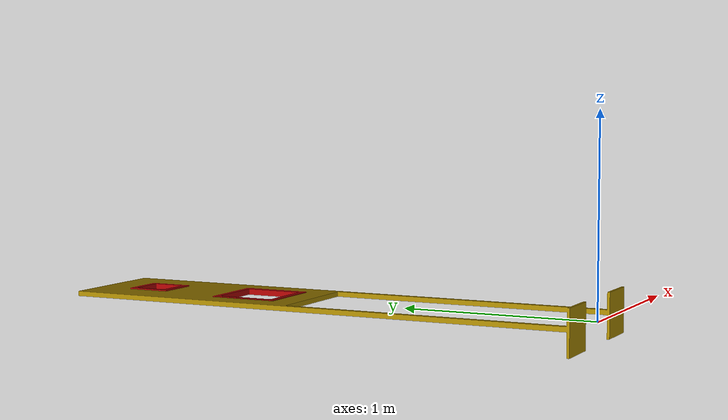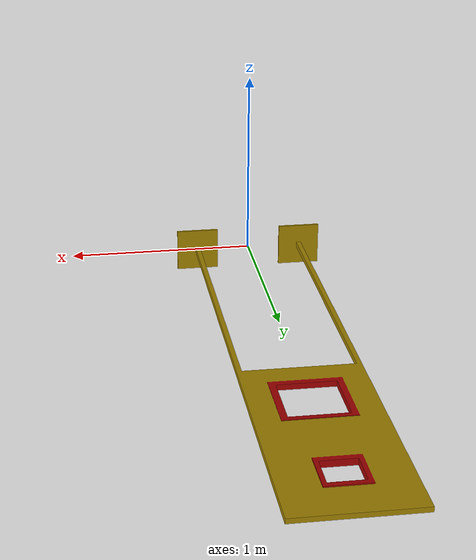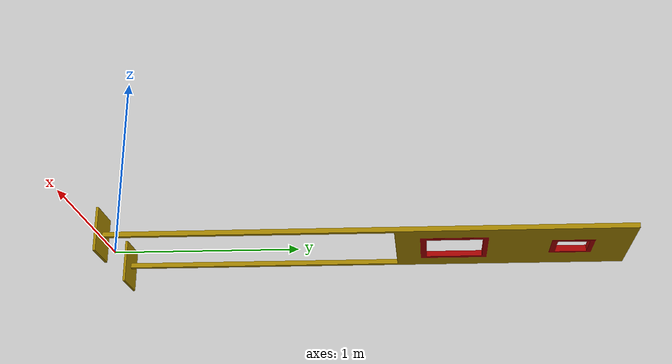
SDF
<?xml version="1.0"?>
<sdf version='1.9'>
  <model name='torpedo_board'>

    <link name='torpedo_board'>
      <pose frame=''>0 0 0 0 0 0</pose>
      <inertial>
        <pose frame=''>0 0 0 0 0 0</pose>
        <mass>1</mass>
        <inertia>
          <ixx>0.166667</ixx>
          <ixy>0</ixy>
          <ixz>0</ixz>
          <iyy>0.166667</iyy>
          <iyz>0</iyz>
          <izz>0.166667</izz>
        </inertia>
      </inertial>
      <collision name='torpedo_board_collision'>
        <pose frame=''>0 0 0 0 0 0</pose>
        <geometry>
          <mesh>
            <uri>model://torpedo_board/torpedo_board.dae</uri>
          </mesh>
        </geometry>
      </collision>
      <visual name='torpedo_board_visual'>
        <pose frame=''>0 0 0 0 0 0</pose>
        <geometry>
          <mesh>
            <uri>model://torpedo_board/torpedo_board.dae</uri>
            <scale>1 1 1</scale>
          </mesh>
        </geometry>
      </visual>
    </link>
  </model>

</sdf>
